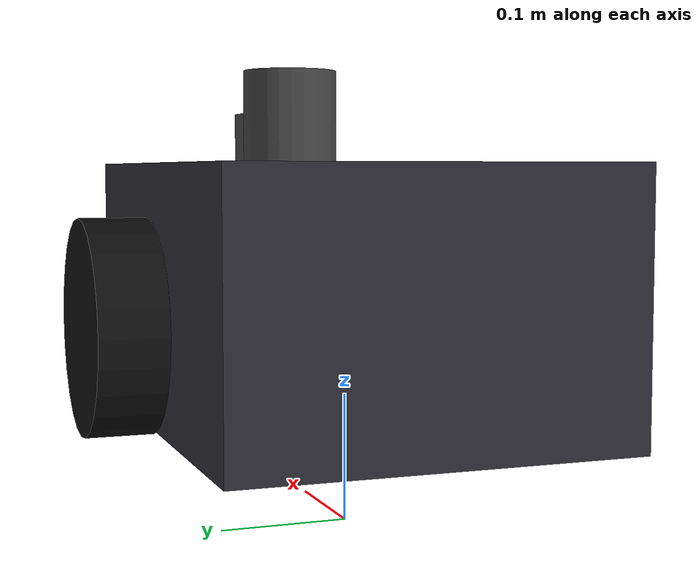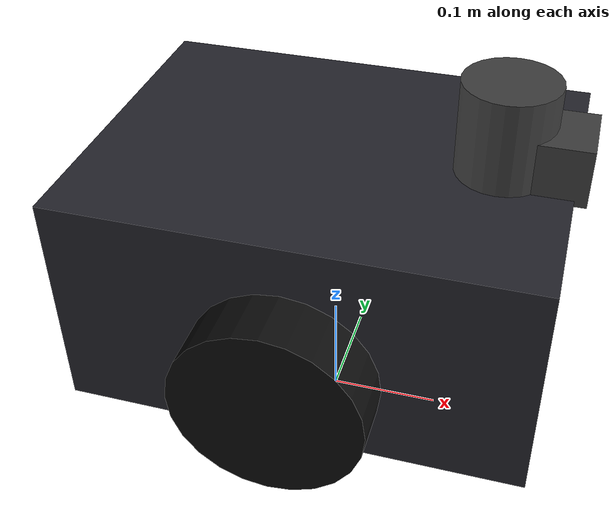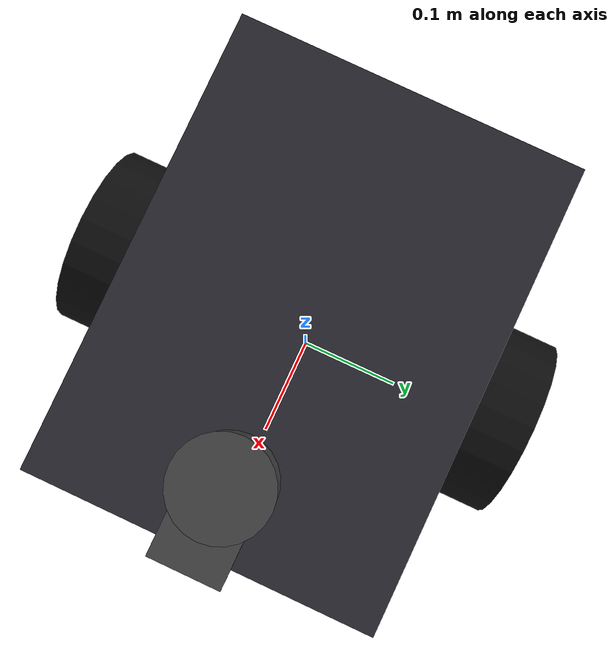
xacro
<?xml version="1.0"?>
<robot name="patrol_bot" xmlns:xacro="http://www.ros.org/wiki/xacro">

  <xacro:arg name="enable_camera" default="true"/>

  <material name="mat_base">
    <color rgba="0.15 0.15 0.18 1.0"/>
  </material>
  <material name="mat_wheel">
    <color rgba="0.05 0.05 0.05 1.0"/>
  </material>
  <material name="mat_sensor">
    <color rgba="0.25 0.25 0.25 1.0"/>
  </material>

  <link name="base_footprint"/>

  <link name="base_link">
    <visual>
      <origin xyz="0 0 0.10"/>
      <geometry>
        <box size="0.40 0.30 0.20"/>
      </geometry>
      <material name="mat_base"/>
    </visual>
    <collision>
      <origin xyz="0 0 0.10"/>
      <geometry>
        <box size="0.40 0.30 0.20"/>
      </geometry>
    </collision>
    <inertial>
      <origin xyz="0 0 0.10"/>
      <mass value="8.0"/>
      <inertia ixx="0.12" ixy="0.0" ixz="0.0" iyy="0.22" iyz="0.0" izz="0.25"/>
    </inertial>
  </link>

  <joint name="base_footprint_joint" type="fixed">
    <parent link="base_footprint"/>
    <child link="base_link"/>
    <origin xyz="0 0 0.08"/>
  </joint>

  <xacro:macro name="drive_wheel" params="name y_pos">
    <link name="${name}">
      <visual>
        <origin rpy="1.5708 0 0"/>
        <geometry>
          <cylinder radius="0.08" length="0.05"/>
        </geometry>
        <material name="mat_wheel"/>
      </visual>
      <collision>
        <origin rpy="1.5708 0 0"/>
        <geometry>
          <cylinder radius="0.08" length="0.05"/>
        </geometry>
      </collision>
      <inertial>
        <mass value="0.8"/>
        <inertia ixx="0.002" ixy="0.0" ixz="0.0" iyy="0.002" iyz="0.0" izz="0.001"/>
      </inertial>
    </link>

    <joint name="${name}_joint" type="continuous">
      <parent link="base_link"/>
      <child link="${name}"/>
      <origin xyz="0 ${y_pos} 0.08"/>
      <axis xyz="0 1 0"/>
    </joint>
  </xacro:macro>

  <xacro:drive_wheel name="left_wheel" y_pos="0.18"/>
  <xacro:drive_wheel name="right_wheel" y_pos="-0.18"/>

  <link name="caster_wheel">
    <visual>
      <geometry>
        <sphere radius="0.045"/>
      </geometry>
      <material name="mat_wheel"/>
    </visual>
    <collision>
      <geometry>
        <sphere radius="0.045"/>
      </geometry>
    </collision>
    <inertial>
      <mass value="0.2"/>
      <inertia ixx="0.0004" ixy="0.0" ixz="0.0" iyy="0.0004" iyz="0.0" izz="0.0004"/>
    </inertial>
  </link>

  <joint name="caster_joint" type="fixed">
    <parent link="base_link"/>
    <child link="caster_wheel"/>
    <origin xyz="-0.15 0 0.045"/>
  </joint>

  <link name="lidar_link">
    <visual>
      <geometry>
        <cylinder radius="0.04" length="0.08"/>
      </geometry>
      <material name="mat_sensor"/>
    </visual>
    <collision>
      <geometry>
        <cylinder radius="0.04" length="0.08"/>
      </geometry>
    </collision>
    <inertial>
      <mass value="0.2"/>
      <inertia ixx="0.0002" ixy="0.0" ixz="0.0" iyy="0.0002" iyz="0.0" izz="0.0002"/>
    </inertial>
  </link>

  <joint name="lidar_joint" type="fixed">
    <parent link="base_link"/>
    <child link="lidar_link"/>
    <origin xyz="0.14 0 0.24"/>
  </joint>

  <xacro:if value="$(arg enable_camera)">
    <link name="camera_link">
      <visual>
        <geometry>
          <box size="0.06 0.06 0.05"/>
        </geometry>
        <material name="mat_sensor"/>
      </visual>
      <collision>
        <geometry>
          <box size="0.06 0.06 0.05"/>
        </geometry>
      </collision>
      <inertial>
        <mass value="0.15"/>
        <inertia ixx="0.0001" ixy="0.0" ixz="0.0" iyy="0.0001" iyz="0.0" izz="0.0001"/>
      </inertial>
    </link>

    <joint name="camera_joint" type="fixed">
      <parent link="base_link"/>
      <child link="camera_link"/>
      <origin xyz="0.18 0 0.22"/>
    </joint>
  </xacro:if>

  <gazebo>
    <plugin name="diff_drive" filename="libgazebo_ros_diff_drive.so">
      <left_joint>left_wheel_joint</left_joint>
      <right_joint>right_wheel_joint</right_joint>
      <wheel_separation>0.36</wheel_separation>
      <wheel_radius>0.08</wheel_radius>
      <wheel_diameter>0.16</wheel_diameter>
      <publish_odom>true</publish_odom>
      <publish_odom_tf>true</publish_odom_tf>
      <odometry_frame>odom</odometry_frame>
      <robot_base_frame>base_link</robot_base_frame>
      <command_topic>/cmd_vel</command_topic>
      <odometry_topic>/odom</odometry_topic>
    </plugin>
  </gazebo>

  <gazebo reference="lidar_link">
    <sensor name="lidar_sensor" type="ray">
      <always_on>true</always_on>
      <update_rate>10.0</update_rate>
      <visualize>true</visualize>
      <ray>
        <scan>
          <horizontal>
            <samples>360</samples>
            <resolution>1</resolution>
            <min_angle>-3.14159</min_angle>
            <max_angle>3.14159</max_angle>
          </horizontal>
        </scan>
        <range>
          <min>0.12</min>
          <max>8.0</max>
          <resolution>0.01</resolution>
        </range>
      </ray>
      <plugin name="lidar_plugin" filename="libgazebo_ros_ray_sensor.so">
        <ros>
          <remapping>~/out:=/scan</remapping>
        </ros>
        <frame_name>lidar_link</frame_name>
        <output_type>sensor_msgs/LaserScan</output_type>
      </plugin>
    </sensor>
  </gazebo>

  <xacro:if value="$(arg enable_camera)">
    <gazebo reference="camera_link">
      <sensor name="front_camera" type="camera">
        <always_on>true</always_on>
        <update_rate>15.0</update_rate>
        <camera>
          <horizontal_fov>1.3963</horizontal_fov>
          <image>
            <width>640</width>
            <height>360</height>
            <format>R8G8B8</format>
          </image>
          <clip>
            <near>0.05</near>
            <far>30.0</far>
          </clip>
        </camera>
        <plugin name="camera_plugin" filename="libgazebo_ros_camera.so">
          <frame_name>camera_link</frame_name>
          <ros>
            <remapping>~/image_raw:=/camera/image_raw</remapping>
            <remapping>~/camera_info:=/camera/camera_info</remapping>
          </ros>
        </plugin>
      </sensor>
    </gazebo>
  </xacro:if>

</robot>
